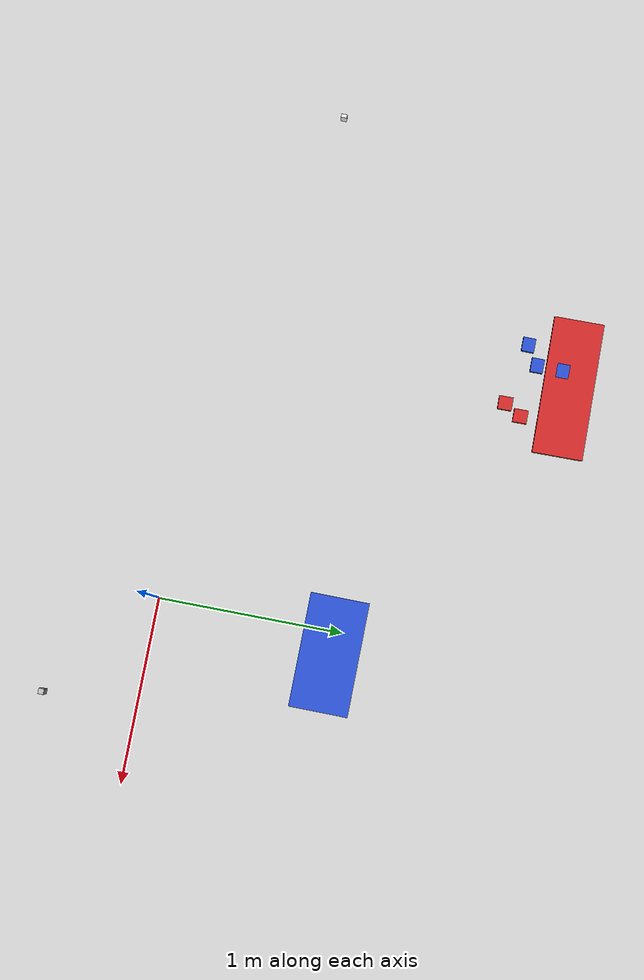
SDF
<sdf version="1.7">
 <world name="ARM_WORLD">
  <light name="sun" type="directional">
   <diffuse>1 1 1 1</diffuse>
   <specular>0.8 0.8 0.8 1</specular>
   <direction>-0.5 -0.5 -1</direction>
   <pose>0 0 2 0 -0 0</pose>
   <attenuation>
    <range>1000</range>
    <constant>1</constant>
    <linear>1</linear>
    <quadratic>0.001</quadratic>
   </attenuation>
   <spot><inner_angle>0</inner_angle><outer_angle>0</outer_angle><falloff>0</falloff></spot>
  </light>
  <model name="ground_plane">
   <static>1</static>
   <link name="link">
    <collision name="collision">
     <geometry><plane><size>100 100</size><normal>0 0 1</normal></plane></geometry>
    </collision>
    <visual name="visual">
     <geometry><plane><size>100 100</size><normal>0 0 1</normal></plane></geometry>
     <material>
      <script><uri>file://media/materials/scripts/gazebo.material</uri><name>Gazebo/Grey</name></script>
     </material>
    </visual>
    <kinematic>1</kinematic>
   </link>
  </model>
  <model name="stone">
   <pose>-2.78708 0.47413 0.031995 0 1e-06 -0.00062</pose>
   <link name="link">
    <inertial>
     <mass>0.05</mass>
     <inertia><ixx>0.001</ixx><ixy>0</ixy><ixz>0</ixz><iyy>0.001</iyy><iyz>0</iyz><izz>0.001</izz></inertia>
    </inertial>
    <collision name="collision">
     <geometry><box><size>0.02 0.032 0.064</size></box></geometry>
     <surface>
      <contact><ode><max_vel>0</max_vel><min_depth>0.003</min_depth></ode></contact>
      <friction><ode><mu>1.13</mu><mu2>1.13</mu2></ode></friction>
     </surface>
    </collision>
    <visual name="visual">
     <geometry><box><size>0.02 0.032 0.064</size></box></geometry>
     <material>
      <script><uri>file://media/materials/scripts/gazebo.material</uri><name>Gazebo/White</name></script>
     </material>
    </visual>
   </link>
  </model>
  <gravity>0 0 -9.8</gravity>
  <magnetic_field>6e-06 2.3e-05 -4.2e-05</magnetic_field>
  <atmosphere type="adiabatic"/>
  <physics name="default_physics" default="0" type="ode">
   <max_step_size>0.001</max_step_size>
   <real_time_factor>1</real_time_factor>
   <real_time_update_rate>1000</real_time_update_rate>
  </physics>
  <scene><ambient>0.4 0.4 0.4 1</ambient><background>0.7 0.7 0.7 1</background><shadows>1</shadows></scene>
  <audio><device>default</device></audio>
  <spherical_coordinates>
   <surface_model>EARTH_WGS84</surface_model>
   <latitude_deg>0</latitude_deg>
   <longitude_deg>0</longitude_deg>
   <elevation>0</elevation>
   <heading_deg>0</heading_deg>
  </spherical_coordinates>
  <model name="place_tray">
   <pose>-1.53123 1.95479 0.011676 1.8e-05 -4.7e-05 0.010868</pose>
   <link name="link">
    <inertial>
     <mass>1</mass>
     <inertia>
      <ixx>0.166667</ixx>
      <ixy>0</ixy>
      <ixz>0</ixz>
      <iyy>0.166667</iyy>
      <iyz>0</iyz>
      <izz>0.166667</izz>
     </inertia>
    </inertial>
    <collision name="collision">
     <geometry><box><size>0.757253 0.274609 0.023348</size></box></geometry>
    </collision>
    <visual name="visual">
     <geometry><box><size>0.757253 0.274609 0.023348</size></box></geometry>
     <material>
      <script><name>Gazebo/Red</name><uri>file://media/materials/scripts/gazebo.material</uri></script>
     </material>
    </visual>
   </link>
  </model>
  <model name="pick_tray">
   <pose>0.124272 0.951468 0.123586 -3e-06 -1e-06 -0.006271</pose>
   <link name="link">
    <inertial>
     <mass>1</mass>
     <inertia>
      <ixx>0.166667</ixx>
      <ixy>0</ixy>
      <ixz>0</ixz>
      <iyy>0.166667</iyy>
      <iyz>0</iyz>
      <izz>0.166667</izz>
     </inertia>
    </inertial>
    <collision name="collision"><geometry><box><size>0.714331 0.30451 0.002205</size></box></geometry></collision>
    <visual name="visual">
     <geometry><box><size>0.607854 0.315174 0.001889</size></box></geometry>
     <material>
      <script><name>Gazebo/Blue</name><uri>file://media/materials/scripts/gazebo.material</uri></script>
     </material>
    </visual>
   </link>
  </model>
  <model name="place_tray_clone">
   <pose>-1.3312 1.72596 0.011674 2e-06 6e-06 0.010874</pose>
   <link name="link">
    <inertial>
     <mass>1</mass>
     <inertia>
      <ixx>0.166667</ixx>
      <ixy>0</ixy>
      <ixz>0</ixz>
      <iyy>0.166667</iyy>
      <iyz>0</iyz>
      <izz>0.166667</izz>
     </inertia>
    </inertial>
    <collision name="collision">
     <geometry><box><size>0.072949 0.076486 0.023348</size></box></geometry>
    </collision>
    <visual name="visual">
     <geometry><box><size>0.072949 0.076486 0.023348</size></box></geometry>
     <material>
      <script><name>Gazebo/Red</name><uri>file://media/materials/scripts/gazebo.material</uri></script>
     </material>
    </visual>
   </link>
  </model>
  <model name="place_tray_clone_0">
   <pose>-1.38643 1.63349 0.011665 -3e-06 1.3e-05 0.010869</pose>
   <link name="link">
    <inertial>
     <mass>1</mass>
     <inertia>
      <ixx>0.166667</ixx>
      <ixy>0</ixy>
      <ixz>0</ixz>
      <iyy>0.166667</iyy>
      <iyz>0</iyz>
      <izz>0.166667</izz>
     </inertia>
    </inertial>
    <collision name="collision">
     <geometry><box><size>0.072949 0.076486 0.023348</size></box></geometry>
    </collision>
    <visual name="visual">
     <geometry><box><size>0.072949 0.076486 0.023348</size></box></geometry>
     <material>
      <script><name>Gazebo/Red</name><uri>file://media/materials/scripts/gazebo.material</uri></script>
     </material>
    </visual>
   </link>
  </model>
  <model name="pick_tray_clone">
   <pose>-1.72637 1.70156 0.011674 3e-06 -0 -0.006071</pose>
   <link name="link">
    <inertial>
     <mass>1</mass>
     <inertia>
      <ixx>0.166667</ixx>
      <ixy>0</ixy>
      <ixz>0</ixz>
      <iyy>0.166667</iyy>
      <iyz>0</iyz>
      <izz>0.166667</izz>
     </inertia>
    </inertial>
    <collision name="collision">
     <geometry><box><size>0.077333 0.068974 0.023348</size></box></geometry>
    </collision>
    <visual name="visual">
     <geometry><box><size>0.077333 0.068974 0.023348</size></box></geometry>
     <material>
      <script><name>Gazebo/Blue</name><uri>file://media/materials/scripts/gazebo.material</uri></script>
     </material>
    </visual>
   </link>
  </model>
  <model name="pick_tray_clone_0">
   <pose>-1.61827 1.90922 0.011674 -3e-06 -0 -0.006057</pose>
   <link name="link">
    <inertial>
     <mass>1</mass>
     <inertia>
      <ixx>0.166667</ixx>
      <ixy>0</ixy>
      <ixz>0</ixz>
      <iyy>0.166667</iyy>
      <iyz>0</iyz>
      <izz>0.166667</izz>
     </inertia>
    </inertial>
    <collision name="collision">
     <geometry><box><size>0.077333 0.068974 0.023348</size></box></geometry>
    </collision>
    <visual name="visual">
     <geometry><box><size>0.077333 0.068974 0.023348</size></box></geometry>
     <material>
      <script><name>Gazebo/Blue</name><uri>file://media/materials/scripts/gazebo.material</uri></script>
     </material>
    </visual>
   </link>
  </model>
  <model name="pick_tray_clone_1">
   <pose>-1.62241 1.76755 0.011674 2e-06 -5e-06 -0.006063</pose>
   <link name="link">
    <inertial>
     <mass>1</mass>
     <inertia>
      <ixx>0.166667</ixx>
      <ixy>0</ixy>
      <ixz>0</ixz>
      <iyy>0.166667</iyy>
      <iyz>0</iyz>
      <izz>0.166667</izz>
     </inertia>
    </inertial>
    <collision name="collision">
     <geometry><box><size>0.077333 0.068974 0.023348</size></box></geometry>
    </collision>
    <visual name="visual">
     <geometry><box><size>0.077333 0.068974 0.023348</size></box></geometry>
     <material>
      <script><name>Gazebo/Blue</name><uri>file://media/materials/scripts/gazebo.material</uri></script>
     </material>
    </visual>
   </link>
  </model>
  <model name="my_cuboid">
   <pose>0.600007 -0.499999 0.050003 -2.9e-05 0.000147 -0</pose>
   <link name="link">
    <collision name="collision"><geometry><box><size>0.03 0.03 0.1</size></box></geometry></collision>
    <visual name="visual"><geometry><box><size>0.03 0.03 0.1</size></box></geometry></visual>
    <inertial>
     <mass>0.2</mass>
     <inertia><ixx>1</ixx><ixy>0</ixy><ixz>0</ixz><iyy>1</iyy><iyz>0</iyz><izz>1</izz></inertia>
    </inertial>
   </link>
  </model>
 </world>
</sdf>
